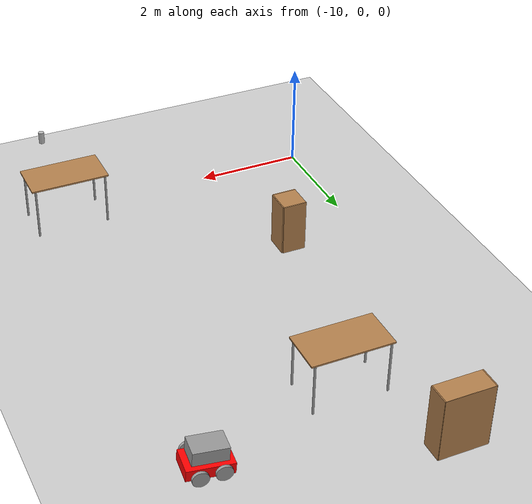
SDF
<sdf version="1.6">
 <world name="default">
  <model name="ground_plane">
   <static>1</static>
   <link name="link">
    <collision name="collision">
     <geometry><plane><normal>0 0 1</normal><size>100 100</size></plane></geometry>
     <surface><friction><ode><mu>100</mu><mu2>50</mu2></ode></friction></surface>
    </collision>
    <visual name="visual">
     <cast_shadows>0</cast_shadows>
     <geometry><plane><normal>0 0 1</normal><size>100 100</size></plane></geometry>
     <material>
      <script><uri>file://media/materials/scripts/gazebo.material</uri><name>Gazebo/Grey</name></script>
     </material>
    </visual>
   </link>
  </model>
  <model name="minikart_0">
   <link name="link_0">
    <inertial>
     <mass>1</mass>
     <inertia>
      <ixx>0.166667</ixx>
      <ixy>0</ixy>
      <ixz>0</ixz>
      <iyy>0.166667</iyy>
      <iyz>0</iyz>
      <izz>0.166667</izz>
     </inertia>
    </inertial>
    <pose>-0.020217 -0.007477 -0.044375 0 -0 0</pose>
    <visual name="visual">
     <geometry><box><size>0.8 0.5 0.2</size></box></geometry>
     <material>
      <lighting>1</lighting>
      <script><uri>file://media/materials/scripts/gazebo.material</uri><name>Gazebo/Grey</name></script>
      <shader type="pixel"><normal_map>__default__</normal_map></shader>
      <ambient>1 0 0 1</ambient>
      <diffuse>1 0 0 1</diffuse>
      <specular>0.5 0.01 0.01 1</specular>
      <emissive>0 0 0 1</emissive>
     </material>
    </visual>
    <collision name="collision">
     <geometry><box><size>0.8 0.5 0.2</size></box></geometry>
     <surface>
      <friction>
       <ode><mu>1</mu><mu2>1</mu2><fdir1>0 0 0</fdir1><slip1>0</slip1><slip2>0</slip2></ode>
       <torsional>
        <coefficient>1</coefficient>
        <patch_radius>0</patch_radius>
        <surface_radius>0</surface_radius>
        <use_patch_radius>1</use_patch_radius>
        <ode><slip>0</slip></ode>
       </torsional>
      </friction>
      <bounce><restitution_coefficient>0</restitution_coefficient><threshold>1e+06</threshold></bounce>
      <contact>
       <collide_without_contact>0</collide_without_contact>
       <collide_without_contact_bitmask>1</collide_without_contact_bitmask>
       <collide_bitmask>1</collide_bitmask>
       <ode>
        <soft_cfm>0</soft_cfm>
        <soft_erp>0.2</soft_erp>
        <kp>1e+13</kp>
        <kd>1</kd>
        <max_vel>0.01</max_vel>
        <min_depth>0</min_depth>
       </ode>
       <bullet>
        <split_impulse>1</split_impulse>
        <split_impulse_penetration_threshold>-0.01</split_impulse_penetration_threshold>
        <soft_cfm>0</soft_cfm>
        <soft_erp>0.2</soft_erp>
        <kp>1e+13</kp>
        <kd>1</kd>
       </bullet>
      </contact>
     </surface>
    </collision>
   </link>
   <link name="link_1">
    <inertial>
     <mass>1</mass>
     <inertia><ixx>0.145833</ixx><ixy>0</ixy><ixz>0</ixz><iyy>0.145833</iyy><iyz>0</iyz><izz>0.125</izz></inertia>
    </inertial>
    <pose>-0.198848 -0.00709 -0.044375 0 -0 0</pose>
    <visual name="visual">
     <pose>0 0 0 1.5708 -0 0</pose>
     <geometry><cylinder><radius>0.05</radius><length>0.7</length></cylinder></geometry>
     <material>
      <lighting>1</lighting>
      <script><uri>file://media/materials/scripts/gazebo.material</uri><name>Gazebo/Grey</name></script>
      <shader type="pixel"><normal_map>__default__</normal_map></shader>
      <ambient>0 0 0 1</ambient>
      <diffuse>0 0 0 1</diffuse>
      <specular>0 0 0 1</specular>
      <emissive>0 0 0 1</emissive>
     </material>
    </visual>
    <collision name="collision">
     <pose>0 0 0 1.5708 -0 0</pose>
     <geometry><cylinder><radius>0.05</radius><length>0.7</length></cylinder></geometry>
     <surface>
      <friction>
       <ode><mu>1</mu><mu2>1</mu2><fdir1>0 0 0</fdir1><slip1>0</slip1><slip2>0</slip2></ode>
       <torsional>
        <coefficient>1</coefficient>
        <patch_radius>0</patch_radius>
        <surface_radius>0</surface_radius>
        <use_patch_radius>1</use_patch_radius>
        <ode><slip>0</slip></ode>
       </torsional>
      </friction>
      <bounce><restitution_coefficient>0</restitution_coefficient><threshold>1e+06</threshold></bounce>
      <contact>
       <collide_without_contact>0</collide_without_contact>
       <collide_without_contact_bitmask>1</collide_without_contact_bitmask>
       <collide_bitmask>1</collide_bitmask>
       <ode>
        <soft_cfm>0</soft_cfm>
        <soft_erp>0.2</soft_erp>
        <kp>1e+13</kp>
        <kd>1</kd>
        <max_vel>0.01</max_vel>
        <min_depth>0</min_depth>
       </ode>
       <bullet>
        <split_impulse>1</split_impulse>
        <split_impulse_penetration_threshold>-0.01</split_impulse_penetration_threshold>
        <soft_cfm>0</soft_cfm>
        <soft_erp>0.2</soft_erp>
        <kp>1e+13</kp>
        <kd>1</kd>
       </bullet>
      </contact>
     </surface>
    </collision>
   </link>
   <link name="link_1_clone">
    <inertial>
     <mass>1</mass>
     <inertia><ixx>0.145833</ixx><ixy>0</ixy><ixz>0</ixz><iyy>0.145833</iyy><iyz>0</iyz><izz>0.125</izz></inertia>
    </inertial>
    <pose>0.182326 -0.007416 -0.044375 0 -0 0</pose>
    <visual name="visual">
     <pose>0 0 0 1.5708 -0 0</pose>
     <geometry><cylinder><radius>0.05</radius><length>0.7</length></cylinder></geometry>
     <material>
      <lighting>1</lighting>
      <script><uri>file://media/materials/scripts/gazebo.material</uri><name>Gazebo/Grey</name></script>
      <shader type="pixel"><normal_map>__default__</normal_map></shader>
      <ambient>0 0 0 1</ambient>
      <diffuse>0 0 0 1</diffuse>
      <specular>0 0 0 1</specular>
      <emissive>0 0 0 1</emissive>
     </material>
    </visual>
    <collision name="collision">
     <pose>0 0 0 1.5708 -0 0</pose>
     <geometry><cylinder><radius>0.05</radius><length>0.7</length></cylinder></geometry>
     <surface>
      <friction>
       <ode><mu>1</mu><mu2>1</mu2><fdir1>0 0 0</fdir1><slip1>0</slip1><slip2>0</slip2></ode>
       <torsional>
        <coefficient>1</coefficient>
        <patch_radius>0</patch_radius>
        <surface_radius>0</surface_radius>
        <use_patch_radius>1</use_patch_radius>
        <ode><slip>0</slip></ode>
       </torsional>
      </friction>
      <bounce><restitution_coefficient>0</restitution_coefficient><threshold>1e+06</threshold></bounce>
      <contact>
       <collide_without_contact>0</collide_without_contact>
       <collide_without_contact_bitmask>1</collide_without_contact_bitmask>
       <collide_bitmask>1</collide_bitmask>
       <ode>
        <soft_cfm>0</soft_cfm>
        <soft_erp>0.2</soft_erp>
        <kp>1e+13</kp>
        <kd>1</kd>
        <max_vel>0.01</max_vel>
        <min_depth>0</min_depth>
       </ode>
       <bullet>
        <split_impulse>1</split_impulse>
        <split_impulse_penetration_threshold>-0.01</split_impulse_penetration_threshold>
        <soft_cfm>0</soft_cfm>
        <soft_erp>0.2</soft_erp>
        <kp>1e+13</kp>
        <kd>1</kd>
       </bullet>
      </contact>
     </surface>
    </collision>
   </link>
   <link name="link_2">
    <inertial>
     <mass>1</mass>
     <inertia><ixx>0.145833</ixx><ixy>0</ixy><ixz>0</ixz><iyy>0.145833</iyy><iyz>0</iyz><izz>0.125</izz></inertia>
    </inertial>
    <pose>0.176149 -0.348651 -0.044375 0 -0 0</pose>
    <visual name="visual">
     <pose>0 0 0 1.5708 -0 0</pose>
     <geometry><cylinder><radius>0.14</radius><length>0.05</length></cylinder></geometry>
     <material>
      <lighting>1</lighting>
      <script><uri>file://media/materials/scripts/gazebo.material</uri><name>Gazebo/Grey</name></script>
      <shader type="pixel"><normal_map>__default__</normal_map></shader>
      <ambient>0 0 0 1</ambient>
      <diffuse>0 0 0 1</diffuse>
      <specular>0 0 0 1</specular>
      <emissive>0 0 0 1</emissive>
     </material>
    </visual>
    <collision name="collision">
     <pose>0 0 0 1.5708 -0 0</pose>
     <geometry><cylinder><radius>0.14</radius><length>0.05</length></cylinder></geometry>
     <surface>
      <friction>
       <ode><mu>1</mu><mu2>1</mu2><fdir1>0 0 0</fdir1><slip1>0</slip1><slip2>0</slip2></ode>
       <torsional>
        <coefficient>1</coefficient>
        <patch_radius>0</patch_radius>
        <surface_radius>0</surface_radius>
        <use_patch_radius>1</use_patch_radius>
        <ode><slip>0</slip></ode>
       </torsional>
      </friction>
      <bounce><restitution_coefficient>0</restitution_coefficient><threshold>1e+06</threshold></bounce>
      <contact>
       <collide_without_contact>0</collide_without_contact>
       <collide_without_contact_bitmask>1</collide_without_contact_bitmask>
       <collide_bitmask>1</collide_bitmask>
       <ode>
        <soft_cfm>0</soft_cfm>
        <soft_erp>0.2</soft_erp>
        <kp>1e+13</kp>
        <kd>1</kd>
        <max_vel>0.01</max_vel>
        <min_depth>0</min_depth>
       </ode>
       <bullet>
        <split_impulse>1</split_impulse>
        <split_impulse_penetration_threshold>-0.01</split_impulse_penetration_threshold>
        <soft_cfm>0</soft_cfm>
        <soft_erp>0.2</soft_erp>
        <kp>1e+13</kp>
        <kd>1</kd>
       </bullet>
      </contact>
     </surface>
    </collision>
   </link>
   <link name="link_2_clone">
    <inertial>
     <mass>1</mass>
     <inertia><ixx>0.145833</ixx><ixy>0</ixy><ixz>0</ixz><iyy>0.145833</iyy><iyz>0</iyz><izz>0.125</izz></inertia>
    </inertial>
    <pose>0.17409 0.334641 -0.044375 0 -0 0</pose>
    <visual name="visual">
     <pose>0 0 0 1.5708 -0 0</pose>
     <geometry><cylinder><radius>0.14</radius><length>0.05</length></cylinder></geometry>
     <material>
      <lighting>1</lighting>
      <script><uri>file://media/materials/scripts/gazebo.material</uri><name>Gazebo/Grey</name></script>
      <shader type="pixel"><normal_map>__default__</normal_map></shader>
      <ambient>0 0 0 1</ambient>
      <diffuse>0 0 0 1</diffuse>
      <specular>0 0 0 1</specular>
      <emissive>0 0 0 1</emissive>
     </material>
    </visual>
    <collision name="collision">
     <pose>0 0 0 1.5708 -0 0</pose>
     <geometry><cylinder><radius>0.14</radius><length>0.05</length></cylinder></geometry>
     <surface>
      <friction>
       <ode><mu>1</mu><mu2>1</mu2><fdir1>0 0 0</fdir1><slip1>0</slip1><slip2>0</slip2></ode>
       <torsional>
        <coefficient>1</coefficient>
        <patch_radius>0</patch_radius>
        <surface_radius>0</surface_radius>
        <use_patch_radius>1</use_patch_radius>
        <ode><slip>0</slip></ode>
       </torsional>
      </friction>
      <bounce><restitution_coefficient>0</restitution_coefficient><threshold>1e+06</threshold></bounce>
      <contact>
       <collide_without_contact>0</collide_without_contact>
       <collide_without_contact_bitmask>1</collide_without_contact_bitmask>
       <collide_bitmask>1</collide_bitmask>
       <ode>
        <soft_cfm>0</soft_cfm>
        <soft_erp>0.2</soft_erp>
        <kp>1e+13</kp>
        <kd>1</kd>
        <max_vel>0.01</max_vel>
        <min_depth>0</min_depth>
       </ode>
       <bullet>
        <split_impulse>1</split_impulse>
        <split_impulse_penetration_threshold>-0.01</split_impulse_penetration_threshold>
        <soft_cfm>0</soft_cfm>
        <soft_erp>0.2</soft_erp>
        <kp>1e+13</kp>
        <kd>1</kd>
       </bullet>
      </contact>
     </surface>
    </collision>
   </link>
   <link name="link_2_clone_0">
    <inertial>
     <mass>1</mass>
     <inertia><ixx>0.145833</ixx><ixy>0</ixy><ixz>0</ixz><iyy>0.145833</iyy><iyz>0</iyz><izz>0.125</izz></inertia>
    </inertial>
    <pose>-0.201075 0.337015 0.000625 0 -0 0</pose>
    <visual name="visual">
     <pose>0 0 0 1.5708 -0 0</pose>
     <geometry><cylinder><radius>0.14</radius><length>0.05</length></cylinder></geometry>
     <material>
      <lighting>1</lighting>
      <script><uri>file://media/materials/scripts/gazebo.material</uri><name>Gazebo/Grey</name></script>
      <shader type="pixel"><normal_map>__default__</normal_map></shader>
      <ambient>0 0 0 1</ambient>
      <diffuse>0 0 0 1</diffuse>
      <specular>0 0 0 1</specular>
      <emissive>0 0 0 1</emissive>
     </material>
    </visual>
    <collision name="collision">
     <pose>0 0 0 1.5708 -0 0</pose>
     <geometry><cylinder><radius>0.14</radius><length>0.05</length></cylinder></geometry>
     <surface>
      <friction>
       <ode><mu>1</mu><mu2>1</mu2><fdir1>0 0 0</fdir1><slip1>0</slip1><slip2>0</slip2></ode>
       <torsional>
        <coefficient>1</coefficient>
        <patch_radius>0</patch_radius>
        <surface_radius>0</surface_radius>
        <use_patch_radius>1</use_patch_radius>
        <ode><slip>0</slip></ode>
       </torsional>
      </friction>
      <bounce><restitution_coefficient>0</restitution_coefficient><threshold>1e+06</threshold></bounce>
      <contact>
       <collide_without_contact>0</collide_without_contact>
       <collide_without_contact_bitmask>1</collide_without_contact_bitmask>
       <collide_bitmask>1</collide_bitmask>
       <ode>
        <soft_cfm>0</soft_cfm>
        <soft_erp>0.2</soft_erp>
        <kp>1e+13</kp>
        <kd>1</kd>
        <max_vel>0.01</max_vel>
        <min_depth>0</min_depth>
       </ode>
       <bullet>
        <split_impulse>1</split_impulse>
        <split_impulse_penetration_threshold>-0.01</split_impulse_penetration_threshold>
        <soft_cfm>0</soft_cfm>
        <soft_erp>0.2</soft_erp>
        <kp>1e+13</kp>
        <kd>1</kd>
       </bullet>
      </contact>
     </surface>
    </collision>
   </link>
   <link name="link_2_clone_1">
    <inertial>
     <mass>1</mass>
     <inertia><ixx>0.145833</ixx><ixy>0</ixy><ixz>0</ixz><iyy>0.145833</iyy><iyz>0</iyz><izz>0.125</izz></inertia>
    </inertial>
    <pose>-0.20738 -0.355325 0.000625 0 -0 0</pose>
    <visual name="visual">
     <pose>0 0 0 1.5708 -0 0</pose>
     <geometry><cylinder><radius>0.14</radius><length>0.05</length></cylinder></geometry>
     <material>
      <lighting>1</lighting>
      <script><uri>file://media/materials/scripts/gazebo.material</uri><name>Gazebo/Grey</name></script>
      <shader type="pixel"><normal_map>__default__</normal_map></shader>
      <ambient>0 0 0 1</ambient>
      <diffuse>0 0 0 1</diffuse>
      <specular>0 0 0 1</specular>
      <emissive>0 0 0 1</emissive>
     </material>
    </visual>
    <collision name="collision">
     <pose>0 0 0 1.5708 -0 0</pose>
     <geometry><cylinder><radius>0.14</radius><length>0.05</length></cylinder></geometry>
     <surface>
      <friction>
       <ode><mu>1</mu><mu2>1</mu2><fdir1>0 0 0</fdir1><slip1>0</slip1><slip2>0</slip2></ode>
       <torsional>
        <coefficient>1</coefficient>
        <patch_radius>0</patch_radius>
        <surface_radius>0</surface_radius>
        <use_patch_radius>1</use_patch_radius>
        <ode><slip>0</slip></ode>
       </torsional>
      </friction>
      <bounce><restitution_coefficient>0</restitution_coefficient><threshold>1e+06</threshold></bounce>
      <contact>
       <collide_without_contact>0</collide_without_contact>
       <collide_without_contact_bitmask>1</collide_without_contact_bitmask>
       <collide_bitmask>1</collide_bitmask>
       <ode>
        <soft_cfm>0</soft_cfm>
        <soft_erp>0.2</soft_erp>
        <kp>1e+13</kp>
        <kd>1</kd>
        <max_vel>0.01</max_vel>
        <min_depth>0</min_depth>
       </ode>
       <bullet>
        <split_impulse>1</split_impulse>
        <split_impulse_penetration_threshold>-0.01</split_impulse_penetration_threshold>
        <soft_cfm>0</soft_cfm>
        <soft_erp>0.2</soft_erp>
        <kp>1e+13</kp>
        <kd>1</kd>
       </bullet>
      </contact>
     </surface>
    </collision>
   </link>
   <link name="link_3">
    <inertial>
     <mass>1</mass>
     <inertia>
      <ixx>0.166667</ixx>
      <ixy>0</ixy>
      <ixz>0</ixz>
      <iyy>0.166667</iyy>
      <iyz>0</iyz>
      <izz>0.166667</izz>
     </inertia>
    </inertial>
    <pose>-0.020217 -0.007477 0.220625 0 -0 0</pose>
    <visual name="visual">
     <geometry><box><size>0.6 0.4 0.25</size></box></geometry>
     <material>
      <lighting>1</lighting>
      <script><uri>file://media/materials/scripts/gazebo.material</uri><name>Gazebo/Grey</name></script>
      <shader type="pixel"><normal_map>__default__</normal_map></shader>
      <ambient>1 1 1 1</ambient>
      <diffuse>1 1 1 1</diffuse>
      <specular>0.01 0.01 0.01 1</specular>
      <emissive>0 0 0 1</emissive>
     </material>
    </visual>
    <collision name="collision">
     <geometry><box><size>0.6 0.4 0.25</size></box></geometry>
     <surface>
      <friction>
       <ode><mu>1</mu><mu2>1</mu2><fdir1>0 0 0</fdir1><slip1>0</slip1><slip2>0</slip2></ode>
       <torsional>
        <coefficient>1</coefficient>
        <patch_radius>0</patch_radius>
        <surface_radius>0</surface_radius>
        <use_patch_radius>1</use_patch_radius>
        <ode><slip>0</slip></ode>
       </torsional>
      </friction>
      <bounce><restitution_coefficient>0</restitution_coefficient><threshold>1e+06</threshold></bounce>
      <contact>
       <collide_without_contact>0</collide_without_contact>
       <collide_without_contact_bitmask>1</collide_without_contact_bitmask>
       <collide_bitmask>1</collide_bitmask>
       <ode>
        <soft_cfm>0</soft_cfm>
        <soft_erp>0.2</soft_erp>
        <kp>1e+13</kp>
        <kd>1</kd>
        <max_vel>0.01</max_vel>
        <min_depth>0</min_depth>
       </ode>
       <bullet>
        <split_impulse>1</split_impulse>
        <split_impulse_penetration_threshold>-0.01</split_impulse_penetration_threshold>
        <soft_cfm>0</soft_cfm>
        <soft_erp>0.2</soft_erp>
        <kp>1e+13</kp>
        <kd>1</kd>
       </bullet>
      </contact>
     </surface>
    </collision>
   </link>
   <joint name="link_0_JOINT_5" type="revolute">
    <parent>link_0</parent>
    <child>link_3</child>
    <axis>
     <xyz>0 0 1</xyz>
     <use_parent_model_frame>0</use_parent_model_frame>
     <limit>
      <lower>-1.79769e+308</lower>
      <upper>1.79769e+308</upper>
      <effort>-1</effort>
      <velocity>-1</velocity>
     </limit>
     <dynamics>
      <spring_reference>0</spring_reference>
      <spring_stiffness>0</spring_stiffness>
      <damping>0</damping>
      <friction>0</friction>
     </dynamics>
    </axis>
    <physics>
     <ode><limit><cfm>0</cfm><erp>0.2</erp></limit><suspension><cfm>0</cfm><erp>0.2</erp></suspension></ode>
    </physics>
   </joint>
   <joint name="link_0_JOINT_7" type="fixed">
    <parent>link_0</parent>
    <child>link_1</child>
    <physics>
     <ode><limit><cfm>0</cfm><erp>0.2</erp></limit><suspension><cfm>0</cfm><erp>0.2</erp></suspension></ode>
    </physics>
   </joint>
   <joint name="link_0_JOINT_8" type="fixed">
    <parent>link_0</parent>
    <child>link_1_clone</child>
    <physics>
     <ode><limit><cfm>0</cfm><erp>0.2</erp></limit><suspension><cfm>0</cfm><erp>0.2</erp></suspension></ode>
    </physics>
   </joint>
   <joint name="link_1_JOINT_2" type="revolute">
    <parent>link_1</parent>
    <child>link_2_clone_0</child>
    <axis>
     <xyz>0 0 1</xyz>
     <use_parent_model_frame>0</use_parent_model_frame>
     <limit>
      <lower>-1.79769e+308</lower>
      <upper>1.79769e+308</upper>
      <effort>-1</effort>
      <velocity>-1</velocity>
     </limit>
     <dynamics>
      <spring_reference>0</spring_reference>
      <spring_stiffness>0</spring_stiffness>
      <damping>0</damping>
      <friction>0</friction>
     </dynamics>
    </axis>
    <physics>
     <ode><limit><cfm>0</cfm><erp>0.2</erp></limit><suspension><cfm>0</cfm><erp>0.2</erp></suspension></ode>
    </physics>
   </joint>
   <joint name="link_1_JOINT_3" type="revolute">
    <parent>link_1</parent>
    <child>link_2_clone_1</child>
    <axis>
     <xyz>0 0 1</xyz>
     <use_parent_model_frame>0</use_parent_model_frame>
     <limit>
      <lower>-1.79769e+308</lower>
      <upper>1.79769e+308</upper>
      <effort>-1</effort>
      <velocity>-1</velocity>
     </limit>
     <dynamics>
      <spring_reference>0</spring_reference>
      <spring_stiffness>0</spring_stiffness>
      <damping>0</damping>
      <friction>0</friction>
     </dynamics>
    </axis>
    <physics>
     <ode><limit><cfm>0</cfm><erp>0.2</erp></limit><suspension><cfm>0</cfm><erp>0.2</erp></suspension></ode>
    </physics>
   </joint>
   <joint name="link_1_clone_JOINT_0" type="revolute">
    <parent>link_1_clone</parent>
    <child>link_2</child>
    <axis>
     <xyz>0 0 1</xyz>
     <use_parent_model_frame>0</use_parent_model_frame>
     <limit>
      <lower>-1.79769e+308</lower>
      <upper>1.79769e+308</upper>
      <effort>-1</effort>
      <velocity>-1</velocity>
     </limit>
     <dynamics>
      <spring_reference>0</spring_reference>
      <spring_stiffness>0</spring_stiffness>
      <damping>0</damping>
      <friction>0</friction>
     </dynamics>
    </axis>
    <physics>
     <ode><limit><cfm>0</cfm><erp>0.2</erp></limit><suspension><cfm>0</cfm><erp>0.2</erp></suspension></ode>
    </physics>
   </joint>
   <joint name="link_1_clone_JOINT_1" type="revolute">
    <parent>link_1_clone</parent>
    <child>link_2_clone</child>
    <axis>
     <xyz>0 0 1</xyz>
     <use_parent_model_frame>0</use_parent_model_frame>
     <limit>
      <lower>-1.79769e+308</lower>
      <upper>1.79769e+308</upper>
      <effort>-1</effort>
      <velocity>-1</velocity>
     </limit>
     <dynamics>
      <spring_reference>0</spring_reference>
      <spring_stiffness>0</spring_stiffness>
      <damping>0</damping>
      <friction>0</friction>
     </dynamics>
    </axis>
    <physics>
     <ode><limit><cfm>0</cfm><erp>0.2</erp></limit><suspension><cfm>0</cfm><erp>0.2</erp></suspension></ode>
    </physics>
   </joint>
   <joint name="link_1_clone_JOINT_4" type="revolute">
    <parent>link_1_clone</parent>
    <child>link_2</child>
    <axis>
     <xyz>1 0 0</xyz>
     <use_parent_model_frame>0</use_parent_model_frame>
     <limit>
      <lower>-1.79769e+308</lower>
      <upper>1.79769e+308</upper>
      <effort>-1</effort>
      <velocity>-1</velocity>
     </limit>
     <dynamics>
      <spring_reference>0</spring_reference>
      <spring_stiffness>0</spring_stiffness>
      <damping>0</damping>
      <friction>0</friction>
     </dynamics>
    </axis>
    <physics>
     <ode><limit><cfm>0</cfm><erp>0.2</erp></limit><suspension><cfm>0</cfm><erp>0.2</erp></suspension></ode>
    </physics>
   </joint>
   <static>0</static>
   <pose>-4.87966 7.45829 0.173052 0.001964 -0.067888 -0.105507</pose>
  </model>
  <model name="table">
   <static>1</static>
   <link name="link">
    <collision name="surface">
     <pose>0 0 1 0 -0 0</pose>
     <geometry><box><size>1.5 0.8 0.03</size></box></geometry>
     <surface><friction><ode><mu>0.6</mu><mu2>0.6</mu2></ode></friction></surface>
    </collision>
    <visual name="visual1">
     <pose>0 0 1 0 -0 0</pose>
     <geometry><box><size>1.5 0.8 0.03</size></box></geometry>
     <material>
      <script><uri>file://media/materials/scripts/gazebo.material</uri><name>Gazebo/Wood</name></script>
     </material>
    </visual>
    <collision name="front_left_leg">
     <pose>0.68 0.38 0.5 0 -0 0</pose>
     <geometry><cylinder><radius>0.02</radius><length>1</length></cylinder></geometry>
    </collision>
    <visual name="front_left_leg">
     <pose>0.68 0.38 0.5 0 -0 0</pose>
     <geometry><cylinder><radius>0.02</radius><length>1</length></cylinder></geometry>
     <material>
      <script><uri>file://media/materials/scripts/gazebo.material</uri><name>Gazebo/Grey</name></script>
     </material>
    </visual>
    <collision name="front_right_leg">
     <pose>0.68 -0.38 0.5 0 -0 0</pose>
     <geometry><cylinder><radius>0.02</radius><length>1</length></cylinder></geometry>
    </collision>
    <visual name="front_right_leg">
     <pose>0.68 -0.38 0.5 0 -0 0</pose>
     <geometry><cylinder><radius>0.02</radius><length>1</length></cylinder></geometry>
     <material>
      <script><uri>file://media/materials/scripts/gazebo.material</uri><name>Gazebo/Grey</name></script>
     </material>
    </visual>
    <collision name="back_right_leg">
     <pose>-0.68 -0.38 0.5 0 -0 0</pose>
     <geometry><cylinder><radius>0.02</radius><length>1</length></cylinder></geometry>
    </collision>
    <visual name="back_right_leg">
     <pose>-0.68 -0.38 0.5 0 -0 0</pose>
     <geometry><cylinder><radius>0.02</radius><length>1</length></cylinder></geometry>
     <material>
      <script><uri>file://media/materials/scripts/gazebo.material</uri><name>Gazebo/Grey</name></script>
     </material>
    </visual>
    <collision name="back_left_leg">
     <pose>-0.68 0.38 0.5 0 -0 0</pose>
     <geometry><cylinder><radius>0.02</radius><length>1</length></cylinder></geometry>
    </collision>
    <visual name="back_left_leg">
     <pose>-0.68 0.38 0.5 0 -0 0</pose>
     <geometry><cylinder><radius>0.02</radius><length>1</length></cylinder></geometry>
     <material>
      <script><uri>file://media/materials/scripts/gazebo.material</uri><name>Gazebo/Grey</name></script>
     </material>
    </visual>
   </link>
   <pose>-7.5805 6.67929 0 0 -0 0</pose>
  </model>
  <model name="table_2">
   <static>1</static>
   <link name="link">
    <collision name="surface">
     <pose>0 0 1 0 -0 0</pose>
     <geometry><box><size>1.5 0.8 0.03</size></box></geometry>
     <surface><friction><ode><mu>0.6</mu><mu2>0.6</mu2></ode></friction></surface>
    </collision>
    <visual name="visual1">
     <pose>0 0 1 0 -0 0</pose>
     <geometry><box><size>1.5 0.8 0.03</size></box></geometry>
     <material>
      <script><uri>file://media/materials/scripts/gazebo.material</uri><name>Gazebo/Wood</name></script>
     </material>
    </visual>
    <collision name="front_left_leg">
     <pose>0.68 0.38 0.5 0 -0 0</pose>
     <geometry><cylinder><radius>0.02</radius><length>1</length></cylinder></geometry>
    </collision>
    <visual name="front_left_leg">
     <pose>0.68 0.38 0.5 0 -0 0</pose>
     <geometry><cylinder><radius>0.02</radius><length>1</length></cylinder></geometry>
     <material>
      <script><uri>file://media/materials/scripts/gazebo.material</uri><name>Gazebo/Grey</name></script>
     </material>
    </visual>
    <collision name="front_right_leg">
     <pose>0.68 -0.38 0.5 0 -0 0</pose>
     <geometry><cylinder><radius>0.02</radius><length>1</length></cylinder></geometry>
    </collision>
    <visual name="front_right_leg">
     <pose>0.68 -0.38 0.5 0 -0 0</pose>
     <geometry><cylinder><radius>0.02</radius><length>1</length></cylinder></geometry>
     <material>
      <script><uri>file://media/materials/scripts/gazebo.material</uri><name>Gazebo/Grey</name></script>
     </material>
    </visual>
    <collision name="back_right_leg">
     <pose>-0.68 -0.38 0.5 0 -0 0</pose>
     <geometry><cylinder><radius>0.02</radius><length>1</length></cylinder></geometry>
    </collision>
    <visual name="back_right_leg">
     <pose>-0.68 -0.38 0.5 0 -0 0</pose>
     <geometry><cylinder><radius>0.02</radius><length>1</length></cylinder></geometry>
     <material>
      <script><uri>file://media/materials/scripts/gazebo.material</uri><name>Gazebo/Grey</name></script>
     </material>
    </visual>
    <collision name="back_left_leg">
     <pose>-0.68 0.38 0.5 0 -0 0</pose>
     <geometry><cylinder><radius>0.02</radius><length>1</length></cylinder></geometry>
    </collision>
    <visual name="back_left_leg">
     <pose>-0.68 0.38 0.5 0 -0 0</pose>
     <geometry><cylinder><radius>0.02</radius><length>1</length></cylinder></geometry>
     <material>
      <script><uri>file://media/materials/scripts/gazebo.material</uri><name>Gazebo/Grey</name></script>
     </material>
    </visual>
   </link>
   <pose>-5.05208 0.22477 0 0 -0 0</pose>
  </model>
  <model name="cabinet">
   <static>1</static>
   <link name="cabinet_bottom_plate">
    <inertial>
     <pose>0 0 -1 0 -0 0</pose>
     <inertia><ixx>2.05</ixx><ixy>0</ixy><ixz>0</ixz><iyy>2.05</iyy><iyz>0</iyz><izz>2.05</izz></inertia>
     <mass>25</mass>
    </inertial>
    <collision name="cabinet_bottom_plate_geom">
     <pose>0 0 0.01 0 -0 0</pose>
     <geometry><box><size>0.45 0.45 0.02</size></box></geometry>
    </collision>
    <visual name="cabinet_bottom_plate_geom_visual">
     <pose>0 0 0.01 0 -0 0</pose>
     <geometry><box><size>0.45 0.45 0.02</size></box></geometry>
     <material>
      <script><uri>file://media/materials/scripts/gazebo.material</uri><name>Gazebo/Wood</name></script>
     </material>
    </visual>
    <collision name="cabinet_bottom_plate_geom_cabinet_back_plate">
     <pose>0.235 0 0.51 0 -0 0</pose>
     <geometry><box><size>0.02 0.45 1.02</size></box></geometry>
    </collision>
    <visual name="cabinet_bottom_plate_geom_cabinet_back_plate_visual">
     <pose>0.235 0 0.51 0 -0 0</pose>
     <geometry><box><size>0.02 0.45 1.02</size></box></geometry>
     <material>
      <script><uri>file://media/materials/scripts/gazebo.material</uri><name>Gazebo/Wood</name></script>
     </material>
    </visual>
    <collision name="cabinet_bottom_plate_geom_cabinet_left_plate">
     <pose>0 0.235 0.51 0 -0 0</pose>
     <geometry><box><size>0.45 0.02 1.02</size></box></geometry>
    </collision>
    <visual name="cabinet_bottom_plate_geom_cabinet_left_plate_visual">
     <pose>0 0.235 0.51 0 -0 0</pose>
     <geometry><box><size>0.45 0.02 1.02</size></box></geometry>
     <material>
      <script><uri>file://media/materials/scripts/gazebo.material</uri><name>Gazebo/Wood</name></script>
     </material>
    </visual>
    <collision name="cabinet_bottom_plate_geom_cabinet_middle_plate">
     <pose>0 0 0.51 0 -0 0</pose>
     <geometry><box><size>0.45 0.45 0.02</size></box></geometry>
    </collision>
    <visual name="cabinet_bottom_plate_geom_cabinet_middle_plate_visual">
     <pose>0 0 0.51 0 -0 0</pose>
     <geometry><box><size>0.45 0.45 0.02</size></box></geometry>
     <material>
      <script><uri>file://media/materials/scripts/gazebo.material</uri><name>Gazebo/Wood</name></script>
     </material>
    </visual>
    <collision name="cabinet_bottom_plate_geom_cabinet_right_plate">
     <pose>0 -0.235 0.51 0 -0 0</pose>
     <geometry><box><size>0.45 0.02 1.02</size></box></geometry>
    </collision>
    <visual name="cabinet_bottom_plate_geom_cabinet_right_plate_visual">
     <pose>0 -0.235 0.51 0 -0 0</pose>
     <geometry><box><size>0.45 0.02 1.02</size></box></geometry>
     <material>
      <script><uri>file://media/materials/scripts/gazebo.material</uri><name>Gazebo/Wood</name></script>
     </material>
    </visual>
    <collision name="cabinet_bottom_plate_geom_cabinet_top_plate">
     <pose>0 0 1.01 0 -0 0</pose>
     <geometry><box><size>0.45 0.45 0.02</size></box></geometry>
    </collision>
    <visual name="cabinet_bottom_plate_geom_cabinet_top_plate_visual">
     <pose>0 0 1.01 0 -0 0</pose>
     <geometry><box><size>0.45 0.45 0.02</size></box></geometry>
     <material>
      <script><uri>file://media/materials/scripts/gazebo.material</uri><name>Gazebo/Wood</name></script>
     </material>
    </visual>
   </link>
   <pose>-8.57205 2.73345 0 0 -0 0</pose>
  </model>
  <model name="bookshelf">
   <static>1</static>
   <link name="link">
    <inertial><mass>1</mass></inertial>
    <collision name="back">
     <pose>0 0.005 0.6 0 -0 0</pose>
     <geometry><box><size>0.9 0.01 1.2</size></box></geometry>
    </collision>
    <visual name="visual1">
     <pose>0 0.005 0.6 0 -0 0</pose>
     <geometry><box><size>0.9 0.01 1.2</size></box></geometry>
     <material>
      <script><uri>file://media/materials/scripts/gazebo.material</uri><name>Gazebo/Wood</name></script>
     </material>
    </visual>
    <collision name="left_side">
     <pose>0.45 -0.195 0.6 0 -0 0</pose>
     <geometry><box><size>0.02 0.4 1.2</size></box></geometry>
    </collision>
    <visual name="visual2">
     <pose>0.45 -0.195 0.6 0 -0 0</pose>
     <geometry><box><size>0.02 0.4 1.2</size></box></geometry>
     <material>
      <script><uri>file://media/materials/scripts/gazebo.material</uri><name>Gazebo/Wood</name></script>
     </material>
    </visual>
    <collision name="right_side">
     <pose>-0.45 -0.195 0.6 0 -0 0</pose>
     <geometry><box><size>0.02 0.4 1.2</size></box></geometry>
    </collision>
    <visual name="visual3">
     <pose>-0.45 -0.195 0.6 0 -0 0</pose>
     <geometry><box><size>0.02 0.4 1.2</size></box></geometry>
     <material>
      <script><uri>file://media/materials/scripts/gazebo.material</uri><name>Gazebo/Wood</name></script>
     </material>
    </visual>
    <collision name="bottom">
     <pose>0 -0.195 0.03 0 -0 0</pose>
     <geometry><box><size>0.88 0.4 0.06</size></box></geometry>
    </collision>
    <visual name="visual4">
     <pose>0 -0.195 0.03 0 -0 0</pose>
     <geometry><box><size>0.88 0.4 0.06</size></box></geometry>
     <material>
      <script><uri>file://media/materials/scripts/gazebo.material</uri><name>Gazebo/Wood</name></script>
     </material>
    </visual>
    <collision name="top">
     <pose>0 -0.195 1.19 0 -0 0</pose>
     <geometry><box><size>0.88 0.4 0.02</size></box></geometry>
    </collision>
    <visual name="visual5">
     <pose>0 -0.195 1.19 0 -0 0</pose>
     <geometry><box><size>0.88 0.4 0.02</size></box></geometry>
     <material>
      <script><uri>file://media/materials/scripts/gazebo.material</uri><name>Gazebo/Wood</name></script>
     </material>
    </visual>
    <collision name="low_shelf">
     <pose>0 -0.195 0.43 0 -0 0</pose>
     <geometry><box><size>0.88 0.4 0.02</size></box></geometry>
    </collision>
    <visual name="visual6">
     <pose>0 -0.195 0.43 0 -0 0</pose>
     <geometry><box><size>0.88 0.4 0.02</size></box></geometry>
     <material>
      <script><uri>file://media/materials/scripts/gazebo.material</uri><name>Gazebo/Wood</name></script>
     </material>
    </visual>
    <collision name="high_shelf">
     <pose>0 -0.195 0.8 0 -0 0</pose>
     <geometry><box><size>0.88 0.4 0.02</size></box></geometry>
    </collision>
    <visual name="visual7">
     <pose>0 -0.195 0.8 0 -0 0</pose>
     <geometry><box><size>0.88 0.4 0.02</size></box></geometry>
     <material>
      <script><uri>file://media/materials/scripts/gazebo.material</uri><name>Gazebo/Wood</name></script>
     </material>
    </visual>
   </link>
   <pose>-8.62781 8.74912 0 0 -0 0</pose>
  </model>
  <model name="beer">
   <link name="link">
    <pose>0 0 0.115 0 -0 0</pose>
    <inertial>
     <mass>0.39</mass>
     <inertia><ixx>0.00058</ixx><ixy>0</ixy><ixz>0</ixz><iyy>0.00058</iyy><iyz>0</iyz><izz>0.00019</izz></inertia>
    </inertial>
    <collision name="collision">
     <geometry><cylinder><radius>0.055</radius><length>0.23</length></cylinder></geometry>
    </collision>
    <visual name="visual">
     <geometry><cylinder><radius>0.055</radius><length>0.23</length></cylinder></geometry>
     <material>
      <script>
       <uri>model://beer/materials/scripts</uri>
       <uri>model://beer/materials/textures</uri>
       <name>Beer/Diffuse</name>
      </script>
     </material>
    </visual>
   </link>
   <pose>-4.99733 -1.02223 1.015 -1.3e-05 2.4e-05 0.000285</pose>
  </model>
 </world>
</sdf>
